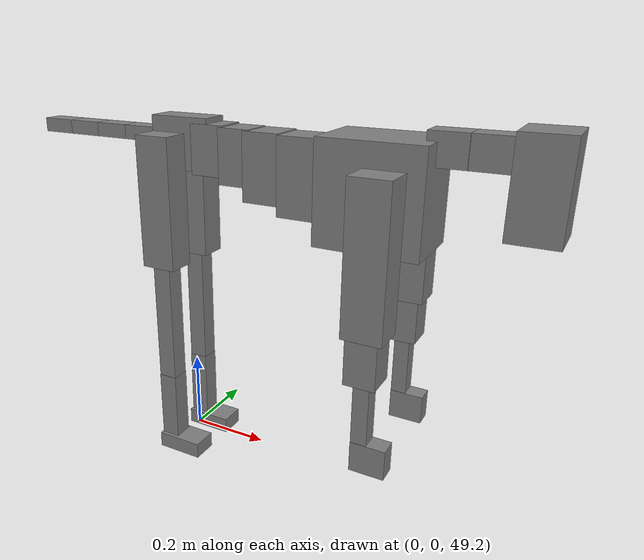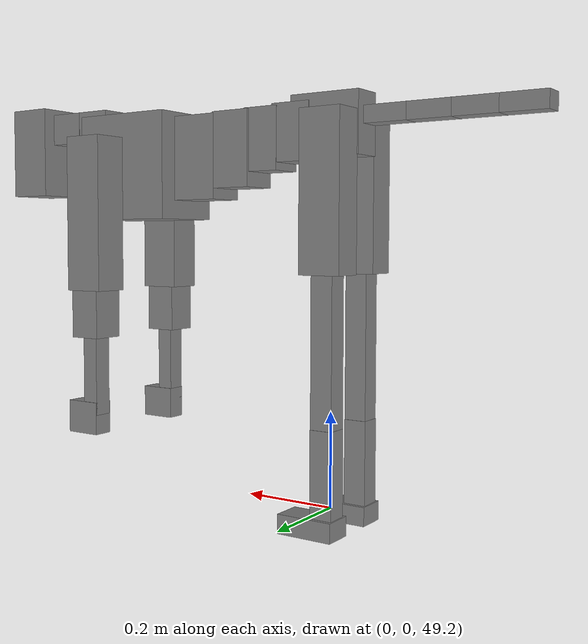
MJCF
<mujoco model="dog">

    <default>
        <joint armature="0.02" stiffness="1" damping="0.2" limited="true"/>
        <geom condim="3" friction="1 0.05 0.05" margin="0.01"/>
        <motor ctrllimited="true" ctrlrange="-1.0 1.0" forcelimited="true" gear="50"/>
    </default>

    <compiler inertiafromgeom="true" angle="radian"/>

    <option timestep="0.016" iterations="50" tolerance="1e-10" solver="Newton" jacobian="dense" cone="pyramidal"/>

    <size nconmax="20000" njmax="60000" nstack="5000000"/>
    <visual>
        <map force="0.1" zfar="30"/>
        <rgba haze="0.15 0.25 0.35 1"/>
        <quality shadowsize="2048"/>
        <global offwidth="800" offheight="800"/>
    </visual>

    <asset>
        <texture type="skybox" builtin="gradient" rgb1="0.3 0.5 0.7" rgb2="0 0 0" width="512" height="512"/>
        <texture name="texplane" type="2d" builtin="checker" rgb1=".2 .3 .4" rgb2=".1 0.15 0.2" width="512" height="512"
                 mark="cross" markrgb=".8 .8 .8"/>
        <texture name="texgeom" type="cube" builtin="flat" mark="cross" width="127" height="1278" rgb1="0.8 0.6 0.4"
                 rgb2="0.8 0.6 0.4" markrgb="1 1 1" random="0.01"/>

        <material name="matplane" reflectance="0.3" texture="texplane" texrepeat="1 1" texuniform="true"/>
        <material name="matgeom" texture="texgeom" texuniform="true" rgba="0.8 0.6 .4 1"/>
    </asset>

    <worldbody>
        <geom name="floor" pos="0 0 0" size="0 0 .25" type="plane" material="matplane" condim="3"/>

        <light directional="false" diffuse=".2 .2 .2" specular="0 0 0" pos="0 0 5" dir="0 0 -1" castshadow="false"/>
        <light mode="targetbodycom" target="torso" directional="false" diffuse=".8 .8 .8" specular="0.3 0.3 0.3"
               pos="0 0 4.0" dir="0 0 -1"/>

        <body name="root" pos="0 0 50">
            <freejoint name="root_1"/>
            <geom type="box" pos="0 0 -0.02" size="0.0774  0.0358  0.063" density="2030"/>

            <body name="spine1" pos="0.054 0 0">
                <joint name="spine1_y" axis="0 1 0" range="0 0.7" limited="true"/>
                <geom type="box" pos="0.02375 0 -0.03" size="0.04375  0.0375  0.05985" density="2030"/>

                <body name="spine2" pos="0.0612 0 0">
                    <joint name="spine2_y" axis="0 1 0" range="-0.15 0.15" limited="true"/>
                    <geom type="box" pos="0.03555  0  -0.04" size="0.04055  0.039  0.06615" density="2030"/>

                    <body name="spine3" pos="0.0730 0 0">
                        <joint name="spine3_y" axis="0 1 0" range="-0.15 0.15" limited="true"/>
                        <geom type="box" pos="0.03555  0  -0.057" size="0.04555  0.0445  0.081" density="2030"/>

                        <body name="spine4" pos="0.0780 0 0">
                            <joint name="spine4_y" axis="0 1 0" range="-0.15 0.15" limited="true"/>
                            <geom type="box" pos="0.05265  0  -0.07" size="0.05265  0.045  0.09135" density="2030"/>

                            <body name="torso" pos="0.1082 0 0">
                                <joint name="torso_y" axis="0 1 0" range="-0.15 0.15" limited="true"/>
                                <geom type="box" pos="0.11925  0  -0.085" size="0.11925  0.085  0.11745"
                                      density="2030"/>

                                <body name="neck1" pos="0.2160  0   0.0180">
                                    <joint name="neck1_y" axis="0 1 0" range="-1.2  -1" limited="true"/>
                                    <geom type="box" pos="0.0423  0  0" size="0.0423  0.03  0.036" density="2325"/>

                                    <body name="neck2" pos="0.0853  0  0">
                                        <joint name="neck2_y" axis="0 1 0" range="0.1  0" limited="true"/>
                                        <geom type="box" pos="0.0423  0  0" size="0.0423  0.03  0.036" density="2325"/>

                                        <body name="head" pos="0.0853  0  0">
                                            <joint name="head_y" axis="0 1 0" range="-0.3  -0.2" limited="true"/>
                                            <geom type="box" pos="0.0531  0  -0.055" size="0.0531  0.06  0.1044"
                                                  density="4030"/>

                                        </body>
                                    </body>
                                </body>

                                <body name="front_shoulder" pos="0.156  0   -0.0480">
                                    <joint name="front_shoulder_y" axis="0 1 0" range="-1 1.5" limited="true"/>
                                    <geom type="box" pos="0 0.13 -0.1431" size="0.0462  0.0395  0.1698" density="1158"/>
                                    <geom type="box" pos="0 -0.13 -0.1431" size="0.0462  0.0395  0.1698"
                                          density="1158"/>

                                    <body name="front_elbow" pos="0  0  -0.2863">
                                        <joint name="front_elbow_y" axis="0 1 0" range="-2 0" limited="true"/>
                                        <geom type="box" pos="0 0.13 -0.0656" size="0.0360  0.0368  0.0656"
                                              density="1081"/>
                                        <geom type="box" pos="0 -0.13 -0.0656" size="0.0360  0.0368  0.0656"
                                              density="1081"/>

                                        <body name="front_wrist" pos="0  0  -0.1312">
                                            <joint name="front_wrist_y" axis="0 1 0" range="-0.2 0" limited="true"/>
                                            <geom type="box" pos="0 0.13 -0.0802" size="0.0185  0.0206  0.0934"
                                                  density="1664"/>
                                            <geom type="box" pos="0 -0.13 -0.0802" size="0.0185  0.0206  0.0934"
                                                  density="1664"/>

                                            <body name="front_finger_end" pos="0  0  -0.1604">
                                                <joint name="front_finger_y" axis="0 1 0" range="-0.4 1"
                                                       limited="true"/>
                                                <geom type="box" pos="0.0222  0.13  -0.0209"
                                                      size="0.0407  0.0222  0.0359" density="1515"/>
                                                <geom type="box" pos="0.0222  -0.13  -0.0209"
                                                      size="0.0407  0.0222  0.0359" density="1515"/>

                                            </body>

                                        </body>
                                    </body>
                                </body>

                            </body>
                        </body>
                    </body>
                </body>
            </body>

            <body name="back_hip" pos="-0.03 0 -0.018">
                <joint name="back_hip_y" axis="0 1 0" range="-1.5 0.3" limited="true"/>
                <geom type="box" pos="0 0.07 -0.1387" size="0.0448  0.0351  0.1615" density="1154"/>
                <geom type="box" pos="0 -0.07 -0.1387" size="0.0448  0.0351  0.1615" density="1154"/>

                <body name="back_knee" pos="0  0  -0.2774">
                    <joint name="back_knee_y" axis="0 1 0" range="0 2.8" limited="true"/>
                    <geom type="box" pos="0 0.07 -0.1689" size="0.0235  0.0231  0.1844" density="1227"/>
                    <geom type="box" pos="0 -0.07 -0.1689" size="0.0235  0.0231  0.1844" density="1227"/>

                    <body name="back_ankle" pos="0  0  -0.3377">
                        <joint name="back_ankle_y" axis="0 1 0" range="-2.2 0" limited="true"/>
                        <geom type="box" pos="0 0.07 -0.0902" size="0.0240  0.0240  0.1015" density="1284"/>
                        <geom type="box" pos="0 -0.07 -0.0902" size="0.0240  0.0240  0.1015" density="1284"/>

                        <body name="back_toe_end" pos="0  0  -0.1805">
                            <joint name="back_toe_y" axis="0 1 0" range="-0.4 1" limited="true"/>
                            <geom type="box" pos="0.0329  0.07  -0.0052" size="0.0603  0.0329  0.0202" density="1515"/>
                            <geom type="box" pos="0.0329  -0.07  -0.0052" size="0.0603  0.0329  0.0202" density="1515"/>

                        </body>
                    </body>
                </body>
            </body>

            <body name="tail1" pos="-0.074 0 -0.006">
                <joint name="tail1_y" axis="0 1 0" range="-0.2 0.2" limited="true"/>
                <geom type="box" pos="-0.0536  0  0" size="0.045  0.025  0.0175" density="1587"/>

                <body name="tail2" pos="-0.09 0 0">
                    <joint name="tail2_y" axis="0 1 0" range="-0.2 0.2" limited="true"/>
                    <geom type="box" pos="-0.0536  0  0" size="0.045  0.025  0.0175" density="1587"/>

                    <body name="tail3" pos="-0.09 0 0">
                        <joint name="tail3_y" axis="0 1 0" range="-0.2 0.2" limited="true"/>
                        <geom type="box" pos="-0.0536  0  0" size="0.045  0.025  0.0175" density="1587"/>

                        <body name="tail4" pos="-0.09 0 0">
                            <joint name="tail4_y" axis="0 1 0" range="-0.2 0.2" limited="true"/>
                            <geom type="box" pos="-0.0536  0  0" size="0.045  0.025  0.0175" density="1587"/>

                        </body>
                    </body>
                </body>
            </body>
        </body>
    </worldbody>

    <actuator>
        <motor joint="spine1_y" forcerange="-150 150     "/>
        <motor joint="spine2_y" forcerange="-150 150     "/>
        <motor joint="spine3_y" forcerange="-150 150     "/>
        <motor joint="spine4_y" forcerange="-150 150     "/>
        <motor joint="torso_y" forcerange="-150 150     "/>
        <motor joint="neck1_y" forcerange="-100 100       "/>
        <motor joint="neck2_y" forcerange="-100 100       "/>
        <motor joint="head_y" forcerange="-150 150       "/>
        <motor joint="front_shoulder_y" forcerange="-190.16 173.28"/>
        <motor joint="front_elbow_y" forcerange="-174.29 193.54"/>
        <motor joint="front_wrist_y" forcerange="-64.12 100.38"/>
        <motor joint="front_finger_y" forcerange="-38.92 39.60"/>
        <motor joint="back_hip_y" forcerange="-301.88 366.18"/>
        <motor joint="back_knee_y" forcerange="-229.13 307.37"/>
        <motor joint="back_angle_y" forcerange="-117.07 166.84"/>
        <motor joint="back_toe_y" forcerange="-128.37 54.58"/>
        <motor joint="tail1_y" forcerange="-50 50     "/>
        <motor joint="tail2_y" forcerange="-50 50     "/>
        <motor joint="tail3_y" forcerange="-50 50     "/>
        <motor joint="tail4_y" forcerange="-50 50     "/>
    </actuator>
</mujoco>
